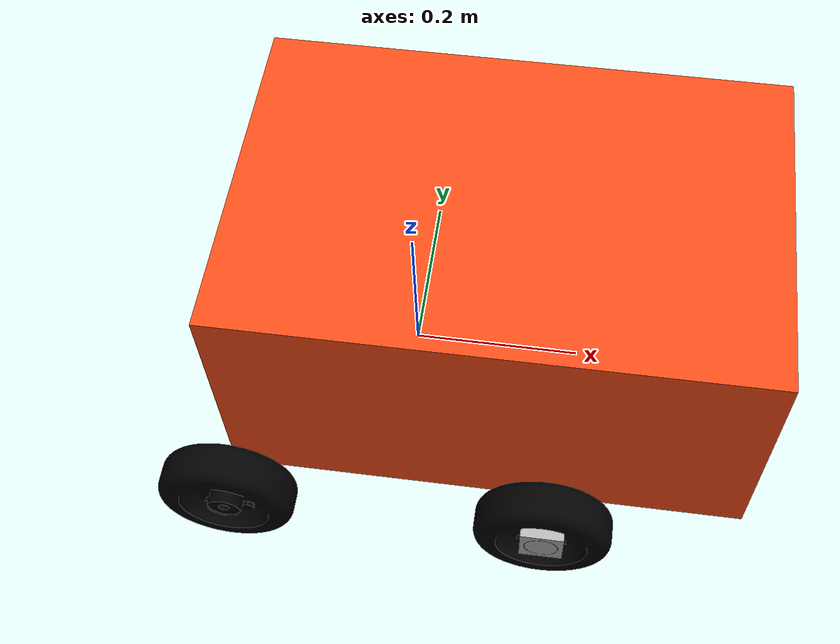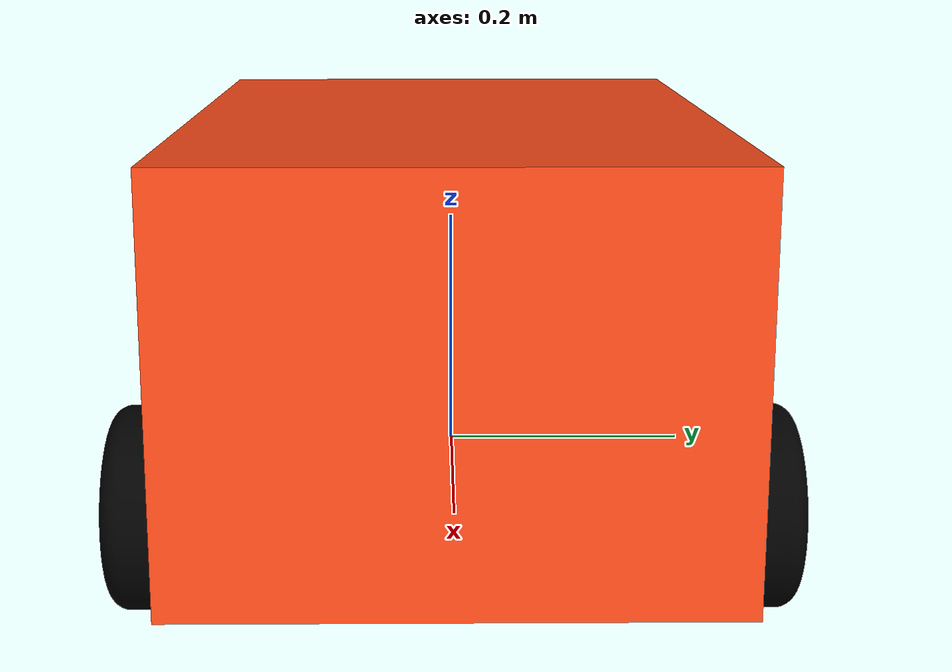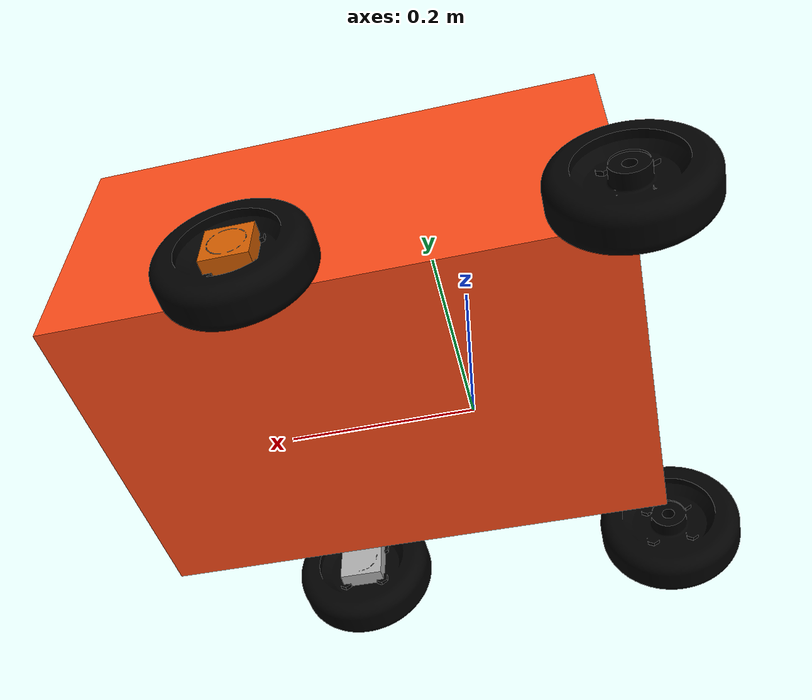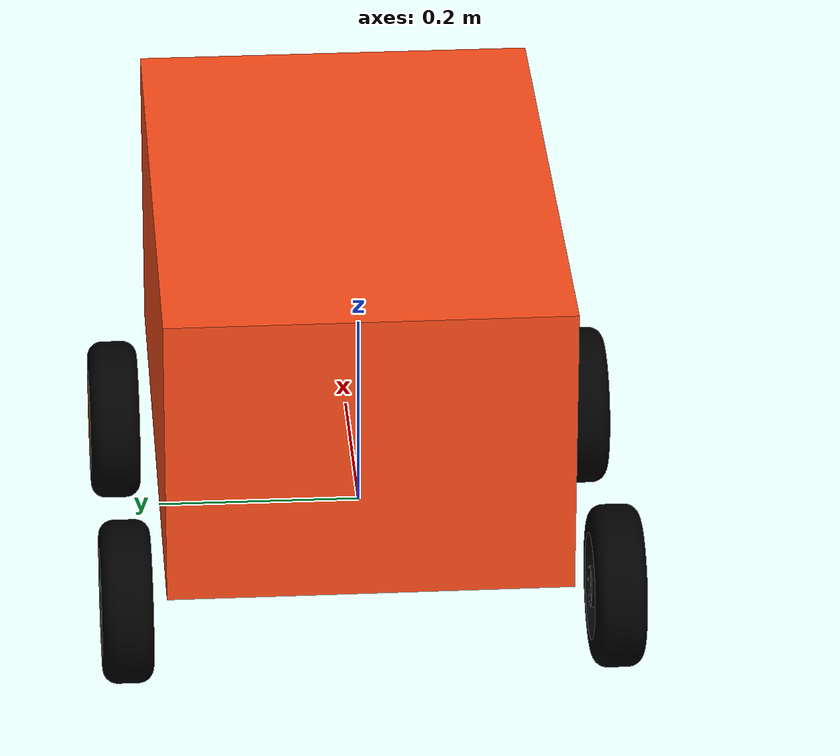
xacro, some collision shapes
<?xml version="1.0"?>
<robot xmlns:xacro="http://www.ros.org/wiki/xacro" >

    <xacro:property name="chassis_length" value="0.6"/>
    <xacro:property name="chassis_width" value="0.4"/>
    <xacro:property name="chassis_height" value="0.3"/>

    <xacro:property name="wheel_radius" value="0.08"/>
    <xacro:property name="wheel_thickness" value="0.05"/>

    <xacro:property name="wheel_base" value="0.38"/>
    <xacro:property name="track_width" value="0.48"/>

    <xacro:property name="chassis_mass" value="20.0"/>
    <xacro:property name="wheel_mass" value="1.0"/>

    <material name="white">
        <color rgba="1 1 1 1"/>
    </material>
    <material name="orange">
        <color rgba="1 0.3 0.1 1"/>
    </material>
    <material name="blue">
        <color rgba="0.2 0.2 1 1"/>
    </material>
    <material name="black">
        <color rgba="0 0 0 1"/>
    </material>

    <link name="base_link"></link>

    <joint name="base_frootprint_joint" type="fixed">
        <parent link="base_link"/>
        <child link="base_footprint"/>
        <origin xyz="0 0 0" rpy="0 0 0"/>
    </joint>

    <link name="base_footprint"></link>

    <joint name="chassis_joint" type="fixed">
        <parent link="base_link"/>
        <child link="chassis"/>
        <origin xyz="${-wheel_base/2} 0 0"/>
    </joint>

    <link name="chassis">
        <visual>
            <origin xyz="0.197 0 0.078" rpy="0 0 ${-pi/2}"/>
            <geometry>
                <mesh filename="package://robot2t/meshes/chassis.stl" scale="0.001 0.001 0.001"/>
            </geometry>
            <material name="orange"/>
        </visual>

        <collision>
            <origin xyz="${chassis_length/2} 0 ${chassis_height/2}"/>
            <geometry>
                <box size="${chassis_length} ${chassis_width} ${chassis_height}"/>
            </geometry>
        </collision>

        <inertial>
            <origin xyz="${chassis_length/2} 0 ${chassis_height/2}" rpy="0 0 0"/>
            <mass value="${chassis_mass}"/>
            <inertia ixx="${(1/12) * chassis_mass * (chassis_width*chassis_width + chassis_height*chassis_height)}" ixy="0.0" ixz="0.0"
                     iyy="${(1/12) * chassis_mass * (chassis_length*chassis_length + chassis_height*chassis_height)}" iyz="0.0"
                     izz="${(1/12) * chassis_mass * (chassis_length*chassis_length + chassis_width*chassis_width)}" />
        </inertial>
    </link>

   <xacro:macro name="rear_wheel" params="prefix y_offset">
        <link name="${prefix}_wheel">
            <visual>
                <origin xyz="0 0 0" rpy="0 ${-pi/2} 0"/>
                <geometry>
                    <mesh filename="package://robot2t/meshes/wheels.stl" scale="0.001 0.001 0.001"/>
                </geometry>
                <material name="black"/>
            </visual>

            <collision>
                <geometry>
                    <cylinder radius="${wheel_radius - 0.005}" length="${wheel_thickness - 0.005}"/>
                </geometry>
                <surface>
                    <friction>
                        <ode>
                            <mu>0.9</mu>
                            <mu2>0.9</mu2>
                        </ode>
                    </friction>
                </surface>
            </collision>

            <inertial>
                <origin xyz="0 0 0" rpy="0 0 0"/>
                <mass value="${wheel_mass}"/>
                <inertia ixx="${(1/12) * wheel_mass * (3*wheel_radius*wheel_radius + wheel_thickness*wheel_thickness)}" ixy="0" ixz="0"
                         iyy="${(1/12) * wheel_mass * (3*wheel_radius*wheel_radius + wheel_thickness*wheel_thickness)}" iyz="0"
                         izz="${(1/2) * wheel_mass * (wheel_radius*wheel_radius)}" />
            </inertial>
        </link>

        <joint name="${prefix}_wheel_joint" type="continuous">
            <parent link="chassis"/>
            <child link="${prefix}_wheel"/>
            <origin xyz="0 ${y_offset} 0" rpy="${-pi/2} 0 0 "/>
            <axis xyz="0 0 1"/>
        </joint>
    </xacro:macro>

    <xacro:rear_wheel prefix="left_rear" y_offset="${track_width/2}"/>
    <xacro:rear_wheel prefix="right_rear" y_offset="${-track_width/2}"/>

    <xacro:macro name="inertial_box" params="mass x y z *origin">
        <inertial>
            <xacro:insert_block name="origin"/>
            <mass value="${mass}" />
            <inertia ixx="${(1/12) * mass * (y*y + z*z)}" ixy="0.0" ixz="0.0"
                     iyy="${(1/12) * mass * (x*x + z*z)}" iyz="0.0"
                     izz="${(1/12) * mass * (x*x + y*y)}" />
        </inertial>
    </xacro:macro>

   <xacro:macro name="front_steering_wheel" params="prefix y_offset">

       <link name="${prefix}_steering_link">
        <visual>
             <geometry><box size="0.05 0.05 0.05"/></geometry>
        </visual>

        <xacro:inertial_box mass="1.0" x="0.05" y="0.05" z="0.05">
            <origin xyz="0 0 0" rpy="0 0 0"/>
        </xacro:inertial_box>
    </link>

        <joint name="${prefix}_steering_joint" type="revolute">
            <parent link="chassis"/>
            <child link="${prefix}_steering_link"/>
            <origin xyz="${wheel_base-0.008} ${y_offset} 0" rpy="0 0 0"/>
            <axis xyz="0 0 1"/>
            <limit lower="-0.6" upper="0.6" effort="10" velocity="1.0"/>
        </joint>

        <link name="${prefix}_front_wheel">
            <visual>
                <origin xyz="0 0 0" rpy="0 ${-pi/2} 0"/>
                <geometry>
                     <mesh filename="package://robot2t/meshes/wheels.stl" scale="0.001 0.001 0.001"/>
                </geometry>
                <material name="black"/>
            </visual>

            <collision>
                <geometry>
                    <cylinder radius="${wheel_radius - 0.005}" length="${wheel_thickness - 0.005}"/>
                </geometry>
                <surface>
                    <friction>
                        <ode>
                            <mu>0.9</mu>
                            <mu2>0.9</mu2>
                        </ode>
                    </friction>
                </surface>
            </collision>

             <inertial>
                <mass value="${wheel_mass}"/>
                <inertia ixx="${(1/12) * wheel_mass * (3*wheel_radius*wheel_radius + wheel_thickness*wheel_thickness)}" ixy="0" ixz="0"
                         iyy="${(1/12) * wheel_mass * (3*wheel_radius*wheel_radius + wheel_thickness*wheel_thickness)}" iyz="0"
                         izz="${(1/2) * wheel_mass * (wheel_radius*wheel_radius)}" />
            </inertial>
        </link>

        <joint name="${prefix}_front_wheel_joint" type="continuous">
            <parent link="${prefix}_steering_link"/>
            <child link="${prefix}_front_wheel"/>
            <origin xyz="0 0 0" rpy="${-pi/2} 0 0"/>
            <axis xyz="0 0 1"/>
        </joint>

    </xacro:macro>

    <xacro:front_steering_wheel prefix="left_front" y_offset="${track_width/2}"/>
    <xacro:front_steering_wheel prefix="right_front" y_offset="${-track_width/2}"/>

</robot>
